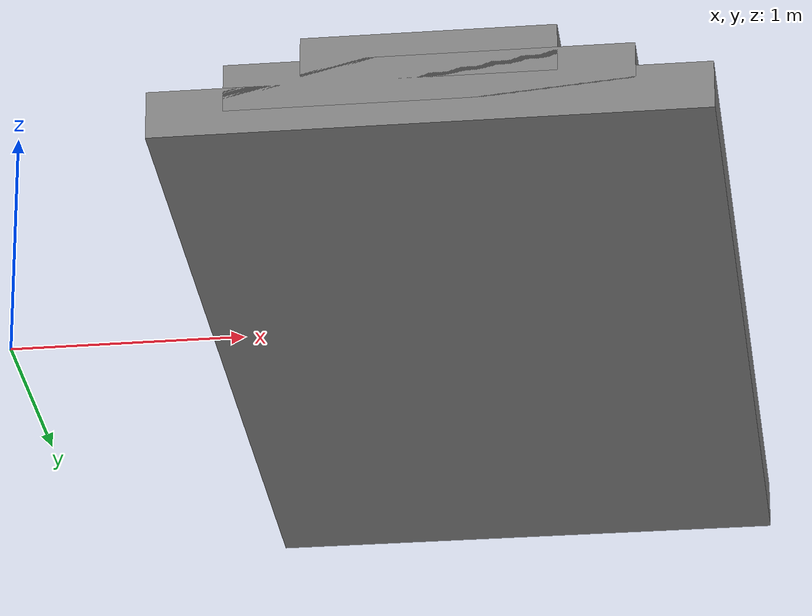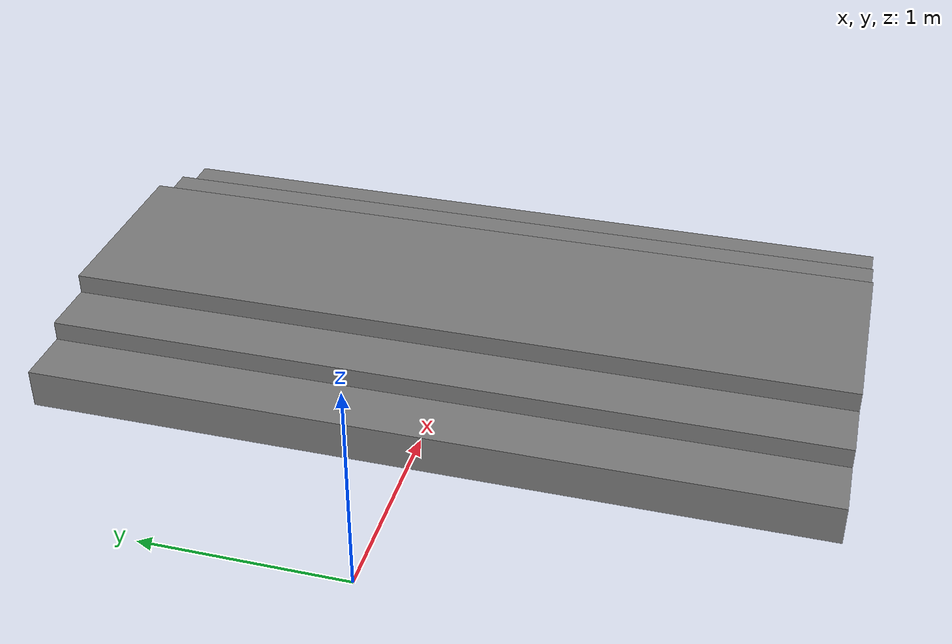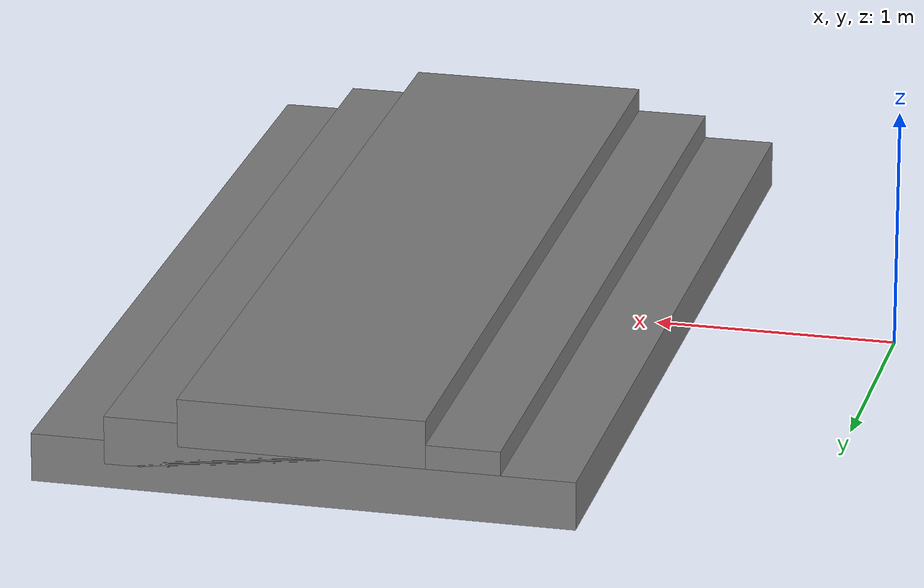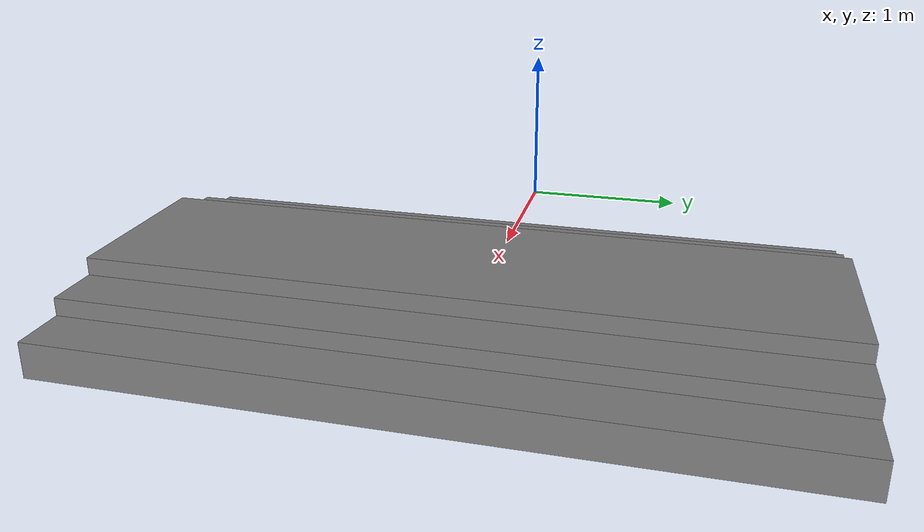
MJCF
<mujoco model="a1 scene">

    <worldbody>
        <geom name="stairs_1" size="1.1 2 0.1" pos="2 0 0.0" type="box"/>
    </worldbody>
    <worldbody>
        <geom name="stairs_2" size="0.8 2 0.1" pos="2 0 0.1" type="box"/>
    </worldbody>
    <worldbody>
        <geom name="stairs_3" size="0.5 2 0.1" pos="2 0 0.2" type="box"/>
    </worldbody>

</mujoco>
